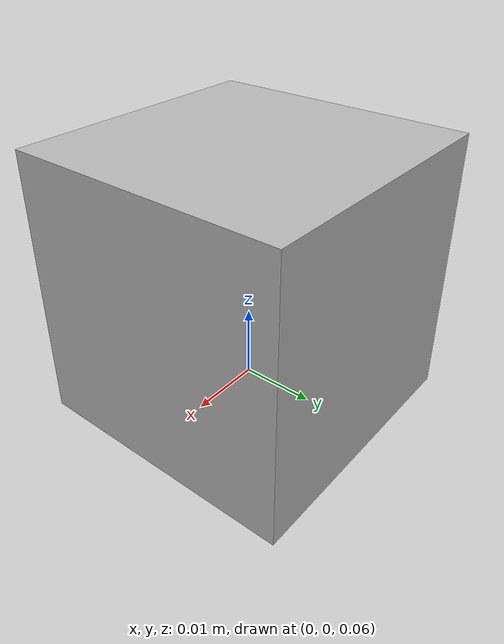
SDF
<?xml version="1.0" ?>
<sdf version='1.6'>
  <model name='target'>
    <link name='target/base_link'>
      <pose frame=''>0 0 0 0 -0 0</pose>
      <inertial>
        <pose frame=''>0 0 0 0 -0 0</pose>
        <mass>1</mass>
        <inertia>
          <ixx>1</ixx>
          <ixy>0</ixy>
          <ixz>0</ixz>
          <iyy>1</iyy>
          <iyz>0</iyz>
          <izz>1</izz>
        </inertia>
      </inertial>
      <visual name='target/base_link_visual'>
        <pose frame=''>0 0 0.075 0 -0 0</pose>
        <geometry>
          <box>
            <size>0.0375 0.0375 0.0375</size>
          </box>
        </geometry>
      </visual>
    </link>
    <static>0</static>
    <plugin name='gzTfUpdate' filename='libgzTfUpdate.so'>
      <actorName>target</actorName>
    </plugin>
  </model>
</sdf>
